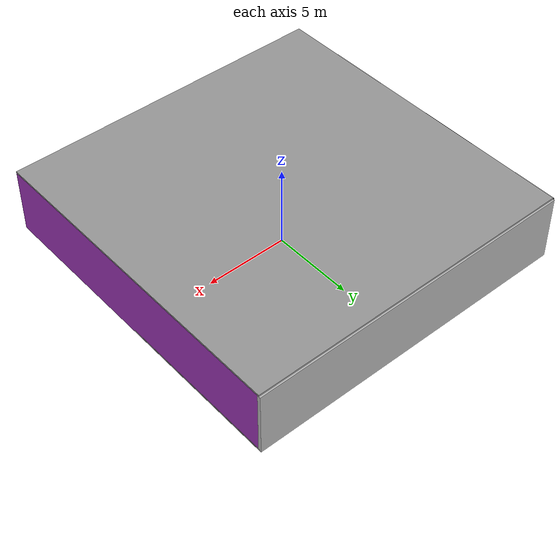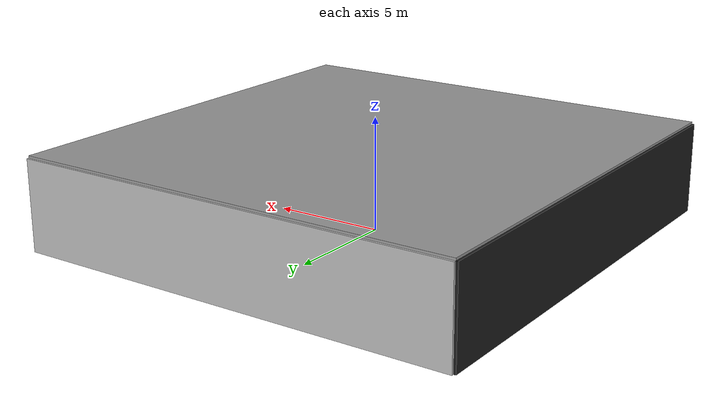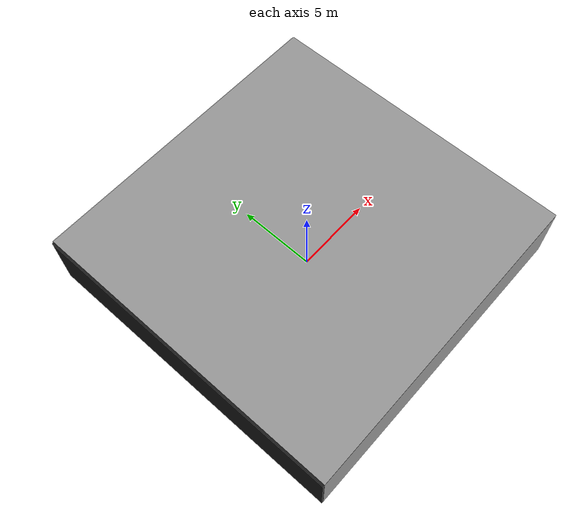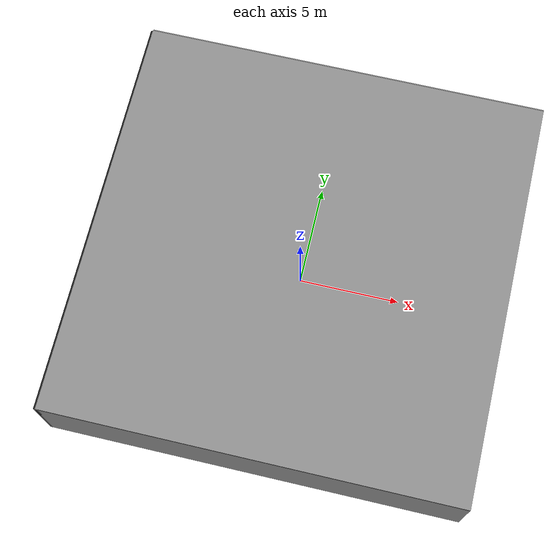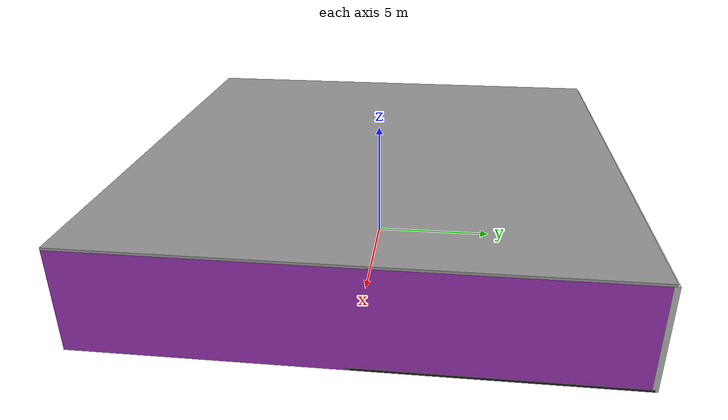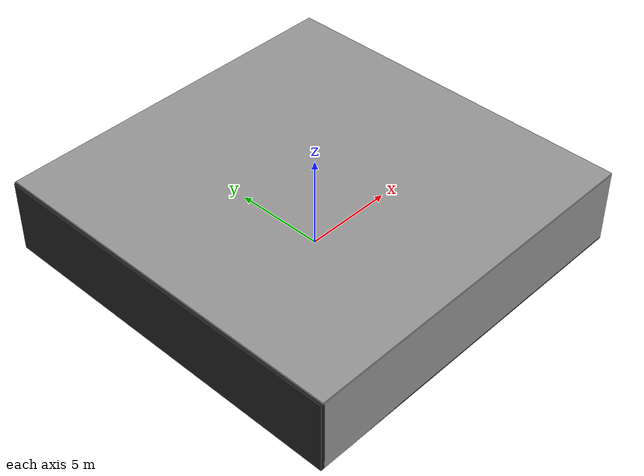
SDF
<sdf version="1.4">
 <world name="default">
  <physics type="ode">
   <max_step_size>0.001</max_step_size>
   <real_time_factor>1</real_time_factor>
   <real_time_update_rate>1000</real_time_update_rate>
   <gravity>0 0 -9.8</gravity>
  </physics>
  <scene><ambient>0.4 0.4 0.4 1</ambient><background>0.7 0.7 0.7 1</background><shadows>1</shadows></scene>
  <model name="Surrounding">
   <static>1</static>
   <link name="Ceiling">
    <collision name="Ceiling_Collision"><geometry><box><size>20 20 0.1</size></box></geometry></collision>
    <visual name="Ceiling_Visual">
     <geometry><box><size>20 20 0.1</size></box></geometry>
     <material>
      <script><uri>file://media/materials/scripts/gazebo.material</uri><name>Gazebo/Grey</name></script>
     </material>
    </visual>
    <pose>0 0 4.05 0 0 0</pose>
   </link>
   <link name="Wall_South">
    <collision name="Wall_South_Collision">
     <geometry><box><size>20 0 4</size></box></geometry>
     <pose>0 0 2 0 -0 0</pose>
    </collision>
    <visual name="Wall_South_Visual">
     <pose>0 0 2 0 -0 0</pose>
     <geometry><box><size>20 0 4</size></box></geometry>
     <material>
      <script><uri>file://media/materials/scripts/gazebo.material</uri><name>Gazebo/GreyGradientSky</name></script>
     </material>
    </visual>
    <velocity_decay><linear>0</linear><angular>0</angular></velocity_decay>
    <pose>0 -10 0 0 -0 0</pose>
   </link>
   <link name="Wall_East">
    <collision name="Wall_21_Collision">
     <geometry><box><size>20 0 4</size></box></geometry>
     <pose>0 0 2 0 -0 0</pose>
    </collision>
    <visual name="Wall_21_Visual">
     <pose>0 0 2 0 -0 0</pose>
     <geometry><box><size>20 0 4</size></box></geometry>
     <material>
      <script><uri>file://media/materials/scripts/gazebo.material</uri><name>Gazebo/PurpleGlow</name></script>
     </material>
    </visual>
    <velocity_decay><linear>0</linear><angular>0</angular></velocity_decay>
    <pose>10 0 0 0 -0 1.5708</pose>
   </link>
   <link name="Wall_North">
    <collision name="Wall_22_Collision">
     <geometry><box><size>20 0.2 4</size></box></geometry>
     <pose>0 0 2 0 -0 0</pose>
    </collision>
    <visual name="Wall_22_Visual">
     <pose>0 0 2 0 -0 0</pose>
     <geometry><box><size>20 0.2 4</size></box></geometry>
     <material>
      <script><uri>file://media/materials/scripts/gazebo.material</uri><name>Gazebo/JointAnchor</name></script>
     </material>
    </visual>
    <velocity_decay><linear>0</linear><angular>0</angular></velocity_decay>
    <pose>0 10 0 0 -0 0</pose>
   </link>
   <link name="Wall_West">
    <collision name="Wall_23_Collision">
     <geometry><box><size>20 0.2 4</size></box></geometry>
     <pose>0 0 2 0 -0 0</pose>
    </collision>
    <visual name="Wall_23_Visual">
     <pose>0 0 2 0 -0 0</pose>
     <geometry><box><size>20 0.2 4</size></box></geometry>
     <material>
      <script><uri>file://media/materials/scripts/gazebo.material</uri><name>Gazebo/Black</name></script>
     </material>
    </visual>
    <velocity_decay><linear>0</linear><angular>0</angular></velocity_decay>
    <pose>-10 0 0 0 0 -1.5708</pose>
   </link>
   <link name="Ground_link">
    <collision name="collision">
     <pose>0 0 .05 0 -0 0</pose>
     <geometry><box><size>20 20 0.1</size></box></geometry>
    </collision>
    <visual name="visual">
     <pose>0 0 .05 0 -0 0</pose>
     <geometry><box><size>20 20 0.1</size></box></geometry>
     <material>
      <script><uri>file://media/materials/scripts/gazebo.material</uri><name>Gazebo/Black</name></script>
     </material>
    </visual>
   </link>
   <static>1</static>
  </model>
  <spherical_coordinates>
   <surface_model>EARTH_WGS84</surface_model>
   <latitude_deg>0</latitude_deg>
   <longitude_deg>0</longitude_deg>
   <elevation>0</elevation>
   <heading_deg>0</heading_deg>
  </spherical_coordinates>
  <light name="lightball_0" type="diffuse">
   <diffuse>0.8 0.8 0.8 1</diffuse>
   <specular>0.2 0.2 0.2 1</specular>
   <attenuation>
    <range>100</range>
    <constant>0.7</constant>
    <linear>0.01</linear>
    <quadratic>0.001</quadratic>
   </attenuation>
   <direction>-0.5 0.1 -0.9</direction>
   <pose>4.21639134543 -9.38293230068 1.18266760509 0 0 0</pose>
  </light>
  <light name="lightball_1" type="diffuse">
   <diffuse>0.8 0.8 0.8 1</diffuse>
   <specular>0.2 0.2 0.2 1</specular>
   <attenuation>
    <range>100</range>
    <constant>0.7</constant>
    <linear>0.01</linear>
    <quadratic>0.001</quadratic>
   </attenuation>
   <direction>-0.5 0.1 -0.9</direction>
   <pose>-3.69387080992 -7.24923280527 3.01304047024 0 0 0</pose>
  </light>
  <light name="lightball_2" type="diffuse">
   <diffuse>0.8 0.8 0.8 1</diffuse>
   <specular>0.2 0.2 0.2 1</specular>
   <attenuation>
    <range>100</range>
    <constant>0.7</constant>
    <linear>0.01</linear>
    <quadratic>0.001</quadratic>
   </attenuation>
   <direction>-0.5 0.1 -0.9</direction>
   <pose>-7.32118355789 -3.49494197849 2.97981978688 0 0 0</pose>
  </light>
  <include>
   <uri>model://textured_shapes</uri>
   <pose>-6.97753174162 2.13284773367 0 0 0 2.56866543106</pose>
  </include>
  <include>
   <uri>model://construction_cone</uri>
   <pose>-4.98028168347 -8.40144626181 0 0 0 2.32654983141</pose>
  </include>
  <include>
   <uri>model://robocup_3Dsim_goal</uri>
   <pose>-2.02322929514 -7.80444867431 0 0 0 2.81781340169</pose>
  </include>
  <include>
   <uri>model://textured_shapes</uri>
   <pose>0.695505003144 -2.44455795623 0 0 0 3.1157365923</pose>
  </include>
  <include>
   <uri>model://robocup_3Dsim_goal</uri>
   <pose>2.28065636076 0.405649927219 0 0 0 0.554617936773</pose>
  </include>
  <include>
   <uri>model://textured_shapes</uri>
   <pose>3.5842822536 -3.73555262372 0 0 0 2.48404876469</pose>
  </include>
  <include>
   <uri>model://construction_cone</uri>
   <pose>7.52752602454 -7.89480768254 0 0 0 0.58180385631</pose>
  </include>
 </world>
</sdf>

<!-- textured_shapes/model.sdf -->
<sdf version="1.6">
  <model name="textured_shapes">
    <pose>0 0 0.5 0 0 0</pose>
    <link name="box">
      <pose>0 -1.5 0 0 0 0</pose>
      <collision name="collision">
        <geometry>
          <box>
            <size>1 1 1</size>
          </box>
        </geometry>
      </collision>
      <visual name="visual">
        <geometry>
          <box>
            <size>1 1 1</size>
          </box>
        </geometry>
        <material>
          <script>
            <uri>model://../model_source/models/textured_shapes/materials/scripts</uri>
            <uri>model://../model_source/models/textured_shapes/materials/textures</uri>
            <name>TexturedShape/Squares</name>
          </script>
        </material>
      </visual>
    </link>
    <link name="sphere">
      <collision name="collision">
        <geometry>
          <sphere>
            <radius>0.5</radius>
          </sphere>
        </geometry>
      </collision>
      <visual name="visual">
        <geometry>
          <sphere>
            <radius>0.5</radius>
          </sphere>
        </geometry>
        <material>
          <script>
            <uri>model://../model_source/models/textured_shapes/materials/scripts</uri>
            <uri>model://../model_source/models/textured_shapes/materials/textures</uri>
            <name>TexturedShape/Squares</name>
          </script>
        </material>
      </visual>
    </link>
    <link name="cylinder">
      <pose>0 1.5 0 0 0 0</pose>
      <collision name="collision">
        <geometry>
          <cylinder>
            <radius>0.5</radius>
            <length>1</length>
          </cylinder>
        </geometry>
      </collision>
      <visual name="visual">
        <geometry>
          <cylinder>
            <radius>0.5</radius>
            <length>1</length>
          </cylinder>
        </geometry>
        <material>
          <script>
            <uri>model://../model_source/models/textured_shapes/materials/scripts</uri>
            <uri>model://../model_source/models/textured_shapes/materials/textures</uri>
            <name>TexturedShape/Squares</name>
          </script>
        </material>
      </visual>
    </link>
  </model>
</sdf>

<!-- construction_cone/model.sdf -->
<sdf version="1.5">
  <model name="Construction Cone">
    <link name="link">
      <collision name="collision">
        <geometry>
          <mesh>
            <scale>10 10 10</scale>
            <uri>file://isr-testbed/construction_cone/meshes/construction_cone.dae</uri>
          </mesh>
        </geometry>
      </collision>
      <visual name="visual">
        <geometry>
          <mesh>
            <scale>10 10 10</scale>
            <uri>file://isr-testbed/construction_cone/meshes/construction_cone.dae</uri>
          </mesh>
        </geometry>
      </visual>
    </link>
  </model>
</sdf>

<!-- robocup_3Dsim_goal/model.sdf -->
<sdf version="1.5">
  <model name="robocup_3d_goal">
    <static>true</static>
    <link name="left_post">
      <pose>0 1.05 0.45 0 0 0</pose>
      <collision name="collision">
        <geometry>
          <cylinder>
            <radius>0.05</radius>
            <length>0.9</length>
          </cylinder>
        </geometry>
      </collision>
      <visual name="visual">
        <geometry>
          <cylinder>
            <radius>0.05</radius>
            <length>0.9</length>
          </cylinder>
        </geometry>
        <material>
          <script>
            <uri>file://media/materials/scripts/gazebo.material</uri>
            <name>Gazebo/ZincYellow</name>
          </script>
        </material>
      </visual>
    </link>
    <link name="left_support_horiz_lower">
      <pose>0.30 1.05 0.01 0 0 0</pose>
      <collision name="collision">
        <geometry>
          <box>
            <size>0.50 0.02 0.02</size>
          </box>
        </geometry>
      </collision>
      <visual name="visual">
        <geometry>
          <box>
            <size>0.50 0.02 0.02</size>
          </box>
        </geometry>
        <material>
          <script>
            <uri>file://media/materials/scripts/gazebo.material</uri>
            <name>Gazebo/White</name>
          </script>
        </material>
      </visual>
    </link>
    <link name="left_support_horiz_upper">
      <pose>0.30 1.05 0.79 0 0 0</pose>
      <collision name="collision">
        <geometry>
          <box>
            <size>0.50 0.02 0.02</size>
          </box>
        </geometry>
      </collision>
      <visual name="visual">
        <geometry>
          <box>
            <size>0.50 0.02 0.02</size>
          </box>
        </geometry>
        <material>
          <script>
            <uri>file://media/materials/scripts/gazebo.material</uri>
            <name>Gazebo/White</name>
          </script>
        </material>
      </visual>
    </link>
    <link name="left_support_vertical">
      <pose>0.56 1.05 0.4 0 1.5708 0</pose>
      <collision name="collision">
        <geometry>
          <box>
            <size>0.80 0.02 0.02</size>
          </box>
        </geometry>
      </collision>
      <visual name="visual">
        <geometry>
          <box>
            <size>0.80 0.02 0.02</size>
          </box>
        </geometry>
        <material>
          <script>
            <uri>file://media/materials/scripts/gazebo.material</uri>
            <name>Gazebo/White</name>
          </script>
        </material>
      </visual>
    </link>
    <link name="right_support_horiz_lower">
      <pose>0.30 -1.05 0.01 0 0 0</pose>
      <collision name="collision">
        <geometry>
          <box>
            <size>0.50 0.02 0.02</size>
          </box>
        </geometry>
      </collision>
      <visual name="visual">
        <geometry>
          <box>
            <size>0.50 0.02 0.02</size>
          </box>
        </geometry>
        <material>
          <script>
            <uri>file://media/materials/scripts/gazebo.material</uri>
            <name>Gazebo/White</name>
          </script>
        </material>
      </visual>
    </link>
    <link name="right_support_horiz_upper">
      <pose>0.30 -1.05 0.79 0 0 0</pose>
      <collision name="collision">
        <geometry>
          <box>
            <size>0.50 0.02 0.02</size>
          </box>
        </geometry>
      </collision>
      <visual name="visual">
        <geometry>
          <box>
            <size>0.50 0.02 0.02</size>
          </box>
        </geometry>
        <material>
          <script>
            <uri>file://media/materials/scripts/gazebo.material</uri>
            <name>Gazebo/White</name>
          </script>
        </material>
      </visual>
    </link>
    <link name="right_support_vertical">
      <pose>0.56 -1.05 0.4 0 1.5708 0</pose>
      <collision name="collision">
        <geometry>
          <box>
            <size>0.80 0.02 0.02</size>
          </box>
        </geometry>
      </collision>
      <visual name="visual">
        <geometry>
          <box>
            <size>0.80 0.02 0.02</size>
          </box>
        </geometry>
        <material>
          <script>
            <uri>file://media/materials/scripts/gazebo.material</uri>
            <name>Gazebo/White</name>
          </script>
        </material>
      </visual>
    </link>
    <link name="center_support_horiz_lower">
      <pose>0.56 0 0.01 0 1.5708 0</pose>
      <collision name="collision">
        <geometry>
          <box>
            <size>0.02 2.08 0.02</size>
          </box>
        </geometry>
      </collision>
      <visual name="visual">
        <geometry>
          <box>
            <size>0.02 2.08 0.02</size>
          </box>
        </geometry>
        <material>
          <script>
            <uri>file://media/materials/scripts/gazebo.material</uri>
            <name>Gazebo/White</name>
          </script>
        </material>
      </visual>
    </link>
    <link name="center_support_horiz_upper">
      <pose>0.56 0 0.79 0 1.5708 0</pose>
      <collision name="collision">
        <geometry>
          <box>
            <size>0.02 2.08 0.02</size>
          </box>
        </geometry>
      </collision>
      <visual name="visual">
        <geometry>
          <box>
            <size>0.02 2.08 0.02</size>
          </box>
        </geometry>
        <material>
          <script>
            <uri>file://media/materials/scripts/gazebo.material</uri>
            <name>Gazebo/White</name>
          </script>
        </material>
      </visual>
    </link>
    <link name="right_post">
      <pose>0 -1.05 0.45 0 0 0</pose>
      <collision name="collision">
        <geometry>
          <cylinder>
            <radius>0.05</radius>
            <length>0.9</length>
          </cylinder>
        </geometry>
      </collision>
      <visual name="visual">
        <geometry>
          <cylinder>
            <radius>0.05</radius>
            <length>0.9</length>
          </cylinder>
        </geometry>
        <material>
          <script>
            <uri>file://media/materials/scripts/gazebo.material</uri>
            <name>Gazebo/ZincYellow</name>
          </script>
        </material>
      </visual>
    </link>
    <link name="crossbar">
      <pose>0 0 0.85 1.57 1.57 0</pose>
      <collision name="collision">
        <geometry>
          <cylinder>
            <radius>0.05</radius>
            <length>2.0</length>
          </cylinder>
        </geometry>
      </collision>
      <visual name="visual">
        <geometry>
          <cylinder>
            <radius>0.05</radius>
            <length>2.0</length>
          </cylinder>
        </geometry>
        <material>
          <script>
            <uri>file://media/materials/scripts/gazebo.material</uri>
            <name>Gazebo/ZincYellow</name>
          </script>
        </material>
      </visual>
    </link>
    <link name="center_net">
      <pose>0.56 0 0.40 0 0 0</pose>
      <collision name="collision">
        <geometry>
          <box>
            <size>0.01 2.1 0.80</size>
          </box>
        </geometry>
      </collision>
      <visual name="visual">
        <geometry>
          <box>
            <size>0.01 2.1 0.80</size>
          </box>
        </geometry>
        <material>
          <script>
            <uri>model://../model_source/models/robocup09_spl_field/materials/scripts/</uri>
            <uri>model://../model_source/models/robocup09_spl_field/materials/textures/</uri>
            <name>RoboCup/Net</name>
          </script>
        </material>
      </visual>
    </link>
    <link name="left_net">
      <pose>0.30 1.05 0.40 0 0 0</pose>
      <collision name="collision">
        <geometry>
          <box>
            <size>0.50 0.01 0.76</size>
          </box>
        </geometry>
      </collision>
      <visual name="visual">
        <geometry>
          <box>
            <size>0.50 0.01 0.76</size>
          </box>
        </geometry>
        <material>
          <script>
            <uri>model://../model_source/models/robocup09_spl_field/materials/scripts/</uri>
            <uri>model://../model_source/models/robocup09_spl_field/materials/textures/</uri>
            <name>RoboCup/Net</name>
          </script>
        </material>
      </visual>
    </link>
    <link name="right_net">
      <pose>0.30 -1.05 0.40 0 0 0</pose>
      <collision name="collision">
        <geometry>
          <box>
            <size>0.50 0.01 0.76</size>
          </box>
        </geometry>
      </collision>
      <visual name="visual">
        <geometry>
          <box>
            <size>0.50 0.01 0.76</size>
          </box>
        </geometry>
        <material>
          <script>
            <uri>model://../model_source/models/robocup09_spl_field/materials/scripts/</uri>
            <uri>model://../model_source/models/robocup09_spl_field/materials/textures/</uri>
            <name>RoboCup/Net</name>
          </script>
        </material>
      </visual>
    </link>
  </model>
</sdf>
